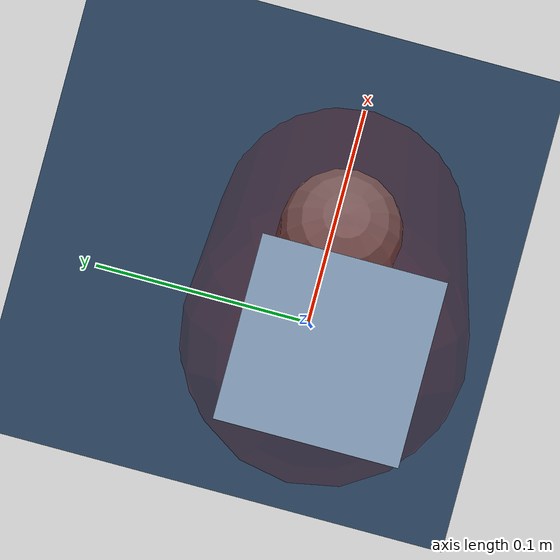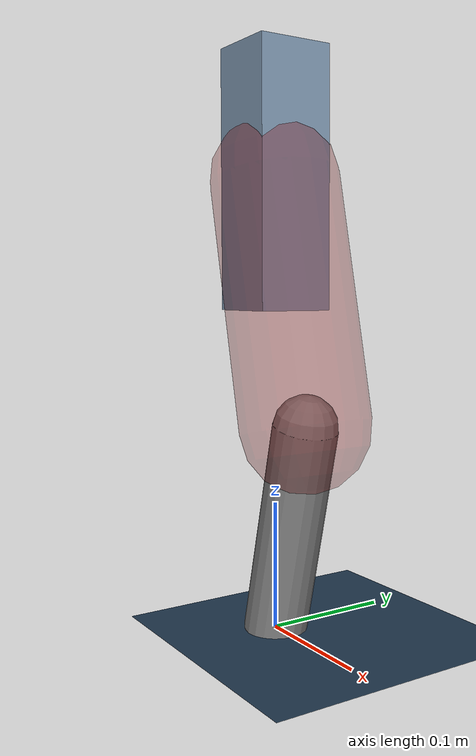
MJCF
<mujoco model="Hopper2D">
	<compiler inertiafromgeom="true" angle="radian" />
	<option timestep="0.001" integrator="implicit" cone="elliptic" solver="Newton" tolerance="1e-10" />

	<default>
		<geom contype="1" conaffinity="1" condim="3" friction="2 0.005 0.0001" solref="0.005 1" />
		<joint limited="true" damping="0.1" />
	</default>

	<asset>
		<texture name="skybox" type="skybox" builtin="gradient" rgb1=".4 .6 .8" rgb2="0 0 0" width="800" height="800" />
		<texture name="grid" type="2d" builtin="checker" rgb1=".1 .2 .3" rgb2=".2 .3 .4" width="300" height="300" mark="edge" markrgb=".2 .3 .4" />
		<material name="ground" texture="grid" texrepeat="1 1" texuniform="true" reflectance="0.1" />
		<material name="leg" rgba="0.5 0.6 0.7 1" />
	</asset>

	<worldbody>

		<geom name="floor" type="plane" size="5 5 0.25" material="ground" />

		<light directional="false" diffuse="0.8 0.8 0.8" specular="0.3 0.3 0.3" pos="0 0 2" dir="0 0 -1" />
		<light mode="targetbodycom" target="base" directional="false" diffuse="0.8 0.8 0.8" specular="0.3 0.3 0.3" pos="0 0 2" dir="0 0 -1" />

		<camera name="fixed" pos="0 -2 1" xyaxes="1 0 0 0 0 1" />
		<camera name="tracking" mode="trackcom" pos="0 -3 1" />

		<body name="root" pos="0 0 0.35202525355599956">
			<joint name="slide_x" type="slide" axis="1 0 0" range="-100 100" />
			<joint name="slide_z" type="slide" axis="0 0 1" range="0 10" />

			<body name="base" pos="0 0 0">
				<geom name="torso" type="box" size="0.03 0.03 0.1" mass="2.056" material="leg" />

				<body name="link1" pos="0 0 0" euler="0 1.3486881726896938 0">
					<joint type="hinge" axis="0 -1 0" pos="0 0 0" name="hinge1" limited="true" range="-3.14 3.14" stiffness="0" damping="0.1" />
					<geom name="thigh" type="capsule" fromto="0 0 0 0.19146090656448858 0 0" size="0.05" rgba="0.5 0 0 0.3" mass="0.7085522664112215" />

					<body name="link2" pos="0.19146090656448858 0 0" euler="0 0.4719747571443449 0">
						<joint type="hinge" axis="0 -1 0" pos="0 0 0" name="hinge2" limited="true" range="-3.14 3.14" stiffness="0" damping="0.1" />
						<geom name="shank" type="capsule" fromto="0 0 0 0.17056434699151096 0 0" size="0.025" mass="0.37575147759320876" />

					</body>
				</body>
			</body>
		</body>
	</worldbody>

	<actuator>
		<motor name="torque1" joint="hinge1" ctrlrange="-58.10424535746674 58.10424535746674" ctrllimited="true" gear="1" />
		<motor name="torque2" joint="hinge2" ctrlrange="-12.922044128258388 12.922044128258388" ctrllimited="true" gear="1" />
	</actuator>
</mujoco>
